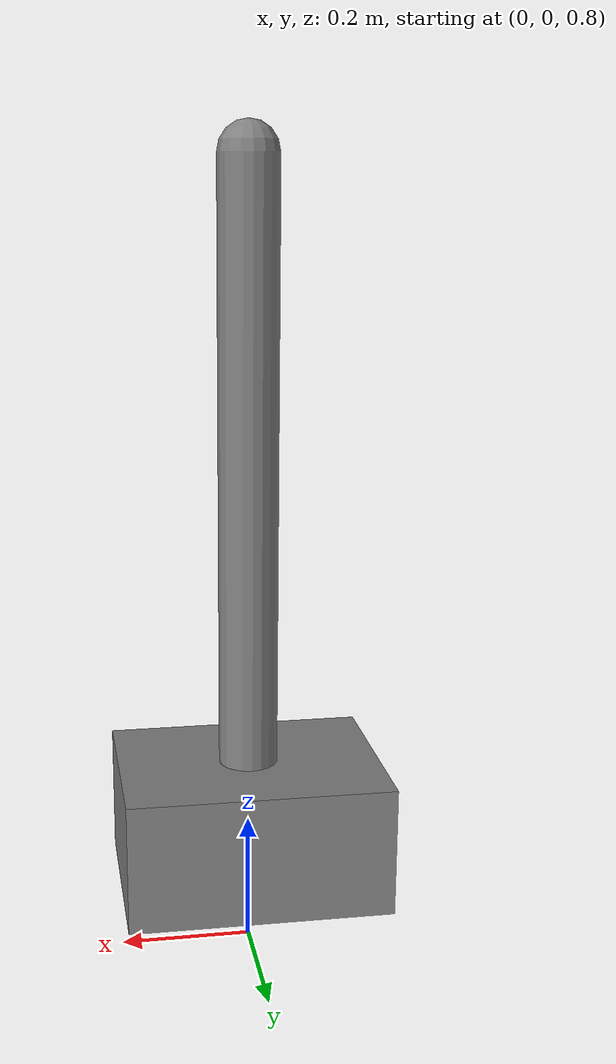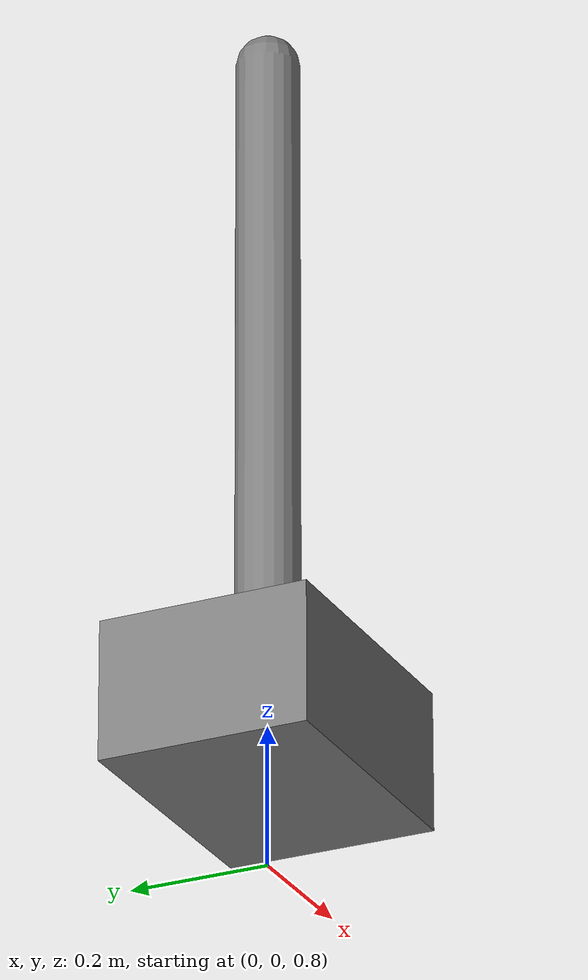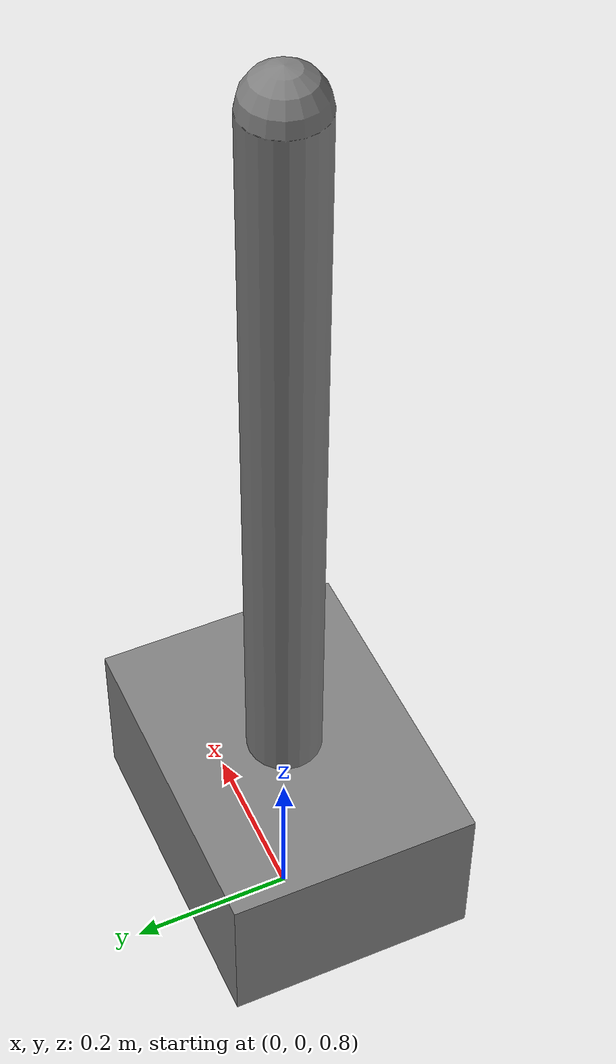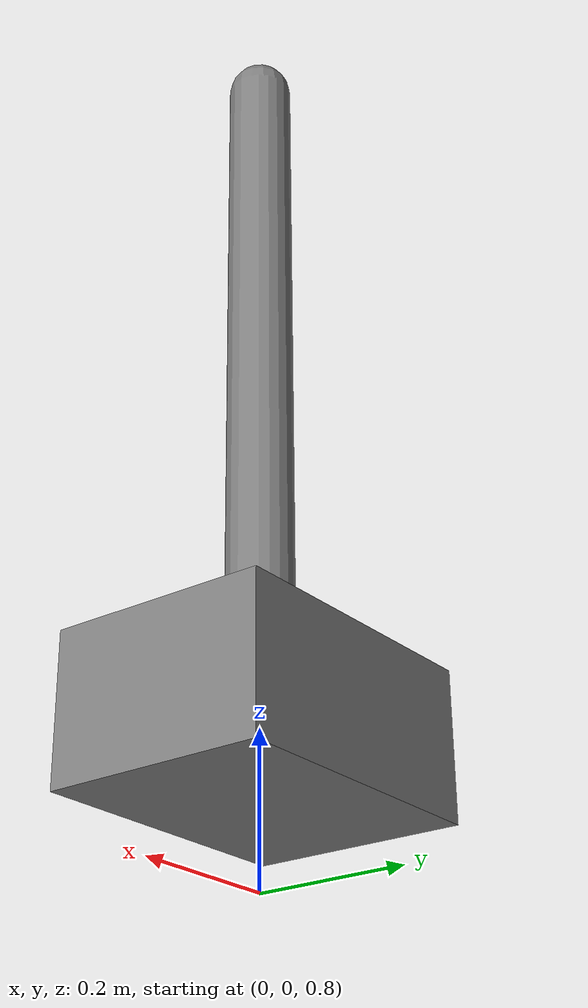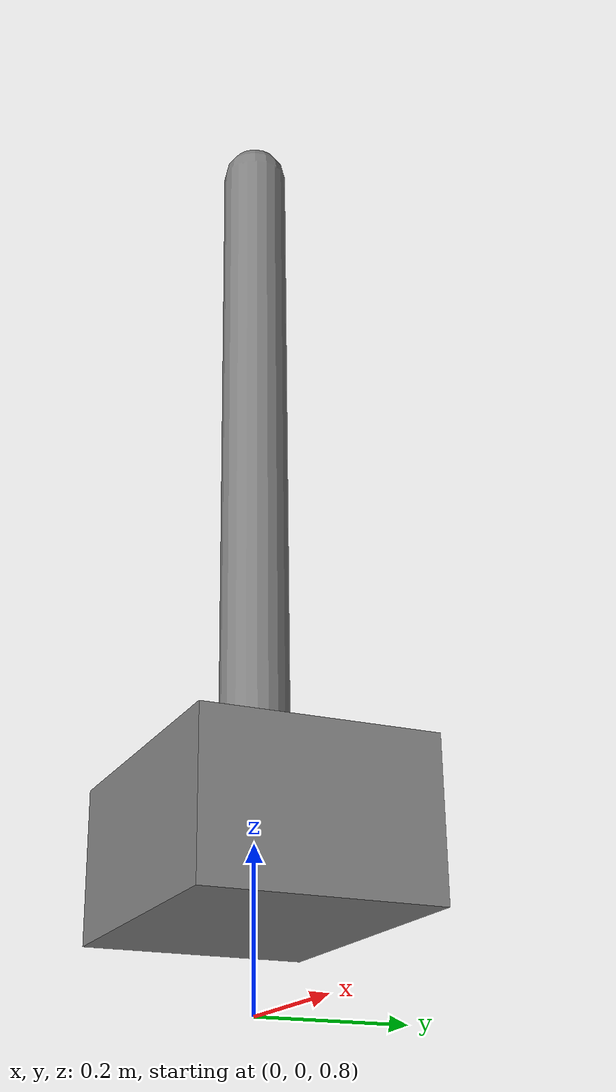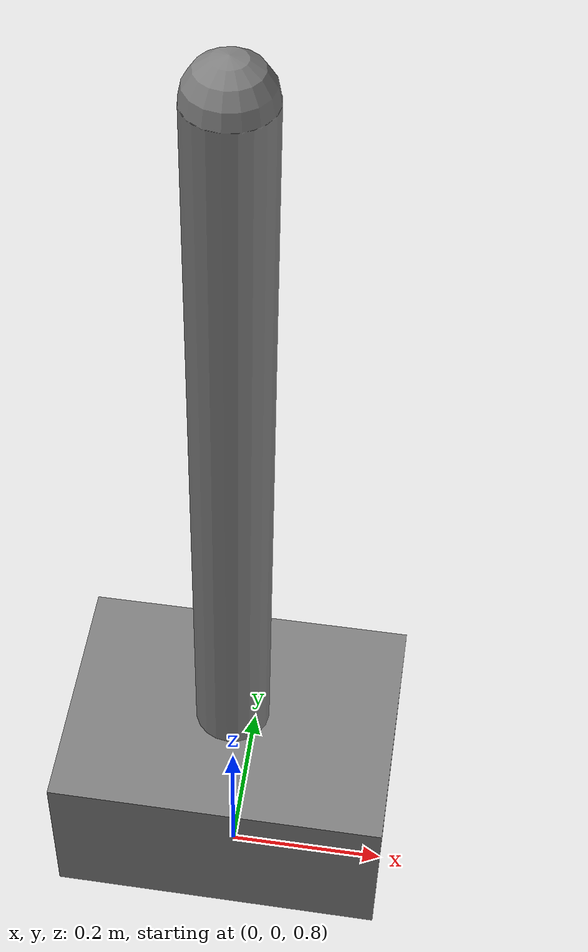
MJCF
<mujoco model="cartpole-native-sonic">
  <!-- CartPole task adaptation, not an official SONIC humanoid plant. -->
  <option timestep="0.01" iterations="1" ls_iterations="4">
    <flag contact="disable" eulerdamp="disable"/>
  </option>
  <worldbody>
    <body name="cart" pos="0 0 1">
      <joint name="slider" type="slide" axis="1 0 0" limited="true" range="-1.8 1.8" solreflimit=".08 1" damping="5e-4"/>
      <geom name="cart" type="box" size=".2 .15 .1" mass="1.0"/>
      <body name="pole">
        <joint name="hinge" type="hinge" axis="0 1 0" damping="2e-6"/>
        <geom name="pole" type="capsule" fromto="0 0 0 0 0 1" size=".045" mass=".1"/>
      </body>
    </body>
  </worldbody>
  <actuator><motor name="slide" joint="slider" gear="10" ctrllimited="true" ctrlrange="-1 1"/></actuator>
</mujoco>
